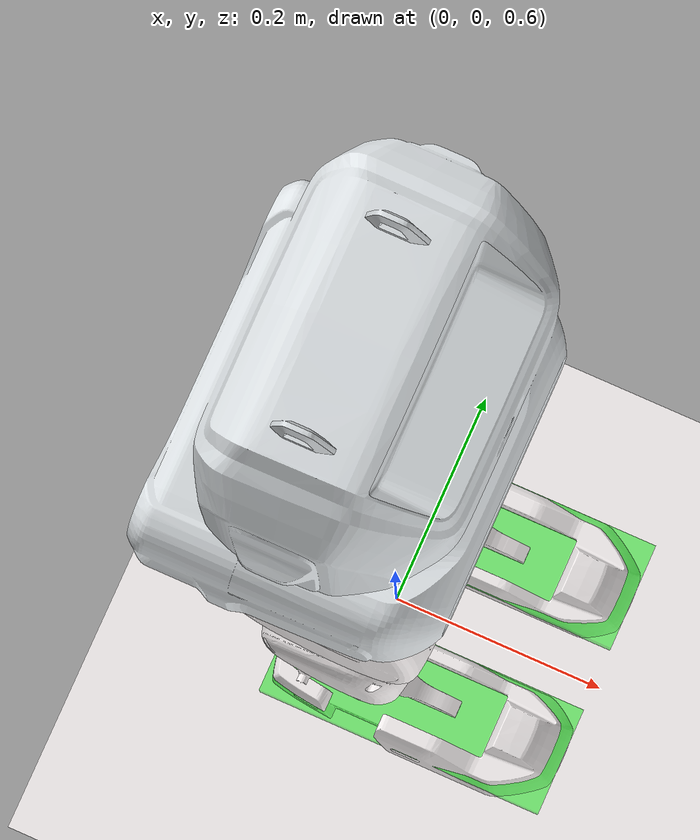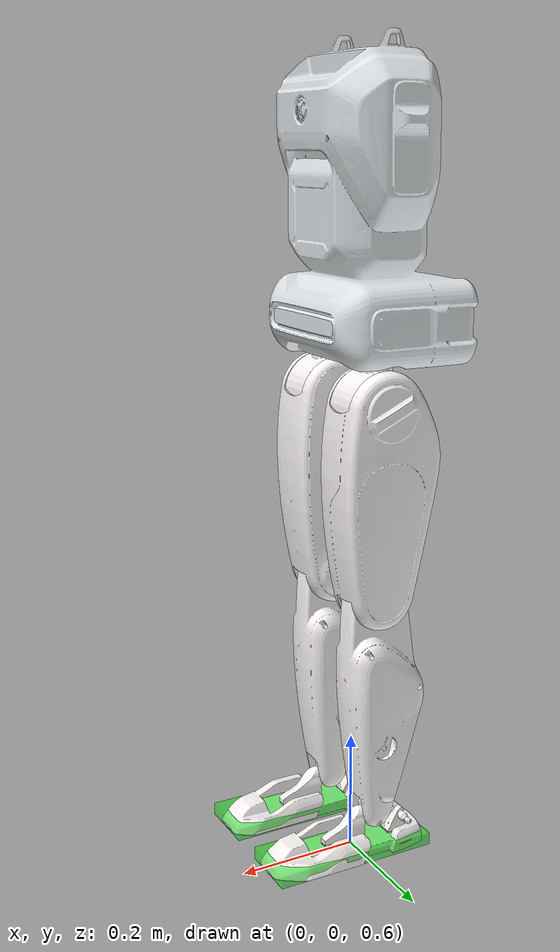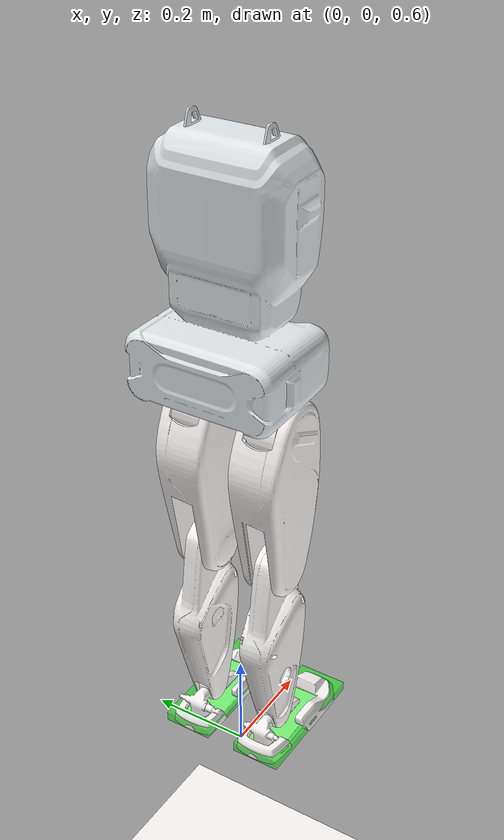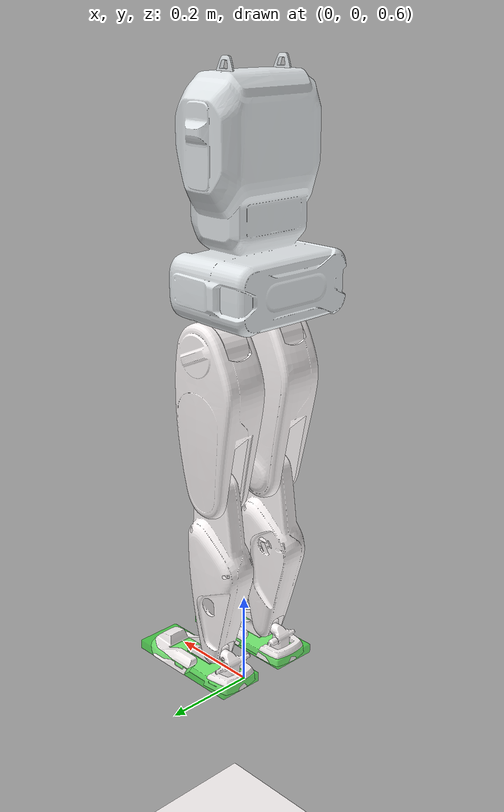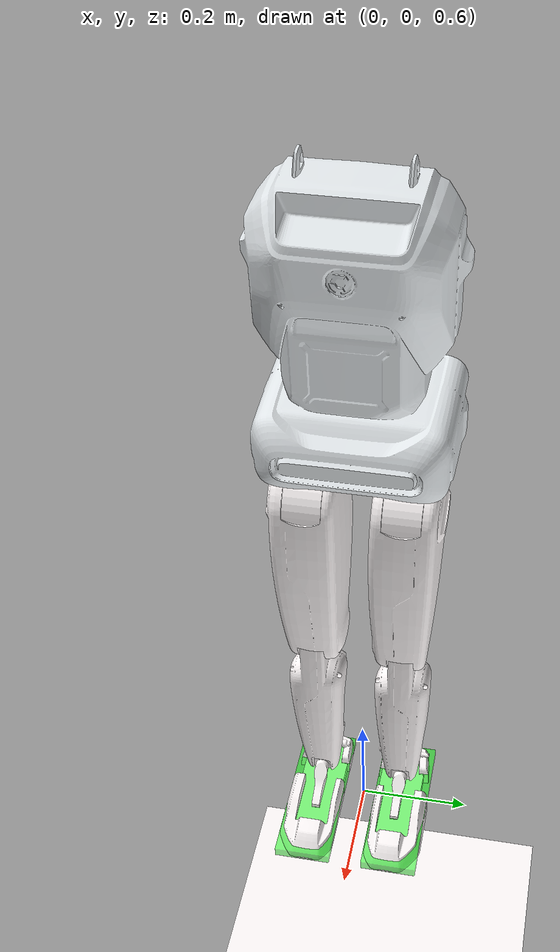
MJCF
<mujoco model="zqsa01">
  <compiler angle="radian" meshdir="../meshes/" />
    <option timestep='0.002' iterations='50' solver='Newton' gravity='0 0 -9.81' integrator = 'RK4'/>
    <size njmax="500" nconmax="100" />

  <size nuser_actuator='1' nuser_sensor='1' nuser_geom='1'/>

  <visual>
      <quality shadowsize='4096'/>
      <map znear='0.01'/>
  </visual>

  <default>
      <geom contype='0' conaffinity='0' condim='3' solref='0.01 0.7' rgba="1.0000 0.9804 0.9804 1"/>
  </default>

  <asset>
    <texture name='plane' type='2d' builtin='checker' rgb1='0.2745 0.5098 0.7059' rgb2='0.5294 0.8078 0.9804' width='512' height='512'/>
    <material name='plane' reflectance='0.0' texture='plane' texrepeat='1 1' texuniform='true'/>
    <mesh name="base_link" file="Base_link.STL" />
    <mesh name="left_leg_link_01" file="LeftLeg_Link_01.STL" />
    <mesh name="left_leg_link_02" file="LeftLeg_Link_02.STL" />
    <mesh name="left_leg_link_03" file="LeftLeg_Link_03.STL" />
    <mesh name="left_leg_link_04" file="LeftLeg_Link_04.STL" />
    <mesh name="left_leg_link_05" file="LeftLeg_Link_05.STL" />
    <mesh name="left_leg_link_06" file="LeftLeg_Link_06.STL" />
    <mesh name="right_leg_link_01" file="RightLeg_Link_01.STL" />
    <mesh name="right_leg_link_02" file="RightLeg_Link_02.STL" />
    <mesh name="right_leg_link_03" file="RightLeg_Link_03.STL" />
    <mesh name="right_leg_link_04" file="RightLeg_Link_04.STL" />
    <mesh name="right_leg_link_05" file="RightLeg_Link_05.STL" />
    <mesh name="right_leg_link_06" file="RightLeg_Link_06.STL" />
  </asset>

  <worldbody>
  <geom name="floor" type="plane" conaffinity="2" size="100 100 .2" material="plane"/>
    <body name="base_link" pos="0 0 1.5">

      <inertial pos="-0.030427 0.00055533 0.10697" quat="1 0 0 0" mass="10.176"
        diaginertia="0.24707543 0.21999950689 0.09662582243" />
      <joint name="root" type="free"/>
      <geom type="mesh" rgba="0.898039 0.917647 0.929412 1" mesh="base_link" contype="0"
        conaffinity="0" solimp=".9 .99 .003" />
      <geom size="0.0001 0.0001 0.0001" type="box" pos="-0.1 0 0.4" rgba="0.6 0.5 0.7 1" contype="2"
        conaffinity="4" solimp=".9 .99 .003" />
      <site name='imu' size='0.01' pos='0.0 0 0.0' />

      <body name="leg_l1_link" pos="0 0.075 0">
        <inertial pos="0.0003501 0.00043844 -0.0020201"
          quat="-0.0065488 0.706024 -0.0111095 0.70807" mass="1.6592"
          diaginertia="0.00296297 0.00222409 0.00170967" />
        <joint name="leg_l1_joint" pos="0 0 0" axis="1 0 0" limited="true" range="-0.523 0.523" armature="0.042" />
        <geom type="mesh" contype="2" conaffinity="4" group="1" mesh="left_leg_link_01" />
        <geom type="mesh" mesh="left_leg_link_01" />
        <body name="leg_l2_link" pos="0 0 0">
          <inertial pos="0.00038352 0.0010044 -0.12214"
            quat="0.70363 0.00263141 -0.0033314 0.710554" mass="1.8008"
            diaginertia="0.00367949 0.00285141 0.00191724" />
          <joint name="leg_l2_joint" pos="0 0 0" axis="0 0 1" limited="true" range="-0.3 0.3" armature="0.042" />
          <geom type="mesh" contype="2" conaffinity="4" group="1" mesh="left_leg_link_02" />
          <geom type="mesh" mesh="left_leg_link_02" />
          <body name="leg_l3_link" pos="0 0 -0.1311">
            <inertial pos="-0.0017654 0.0012877 -0.13954"
              quat="0.705731 -0.0339526 -0.0114711 0.707573" mass="3.9299"
              diaginertia="0.0356364 0.0321225 0.0100504" />
            <joint name="leg_l3_joint" pos="0 0 0" axis="0 1 0" limited="true" range="-1.204 1.204"  armature="0.042" />
            <geom type="mesh" contype="2" conaffinity="4" group="1" mesh="left_leg_link_03" />
            <geom type="mesh" mesh="left_leg_link_03" />
            <body name="leg_l4_link" pos="0 5.9998e-05 -0.3">
              <inertial pos="-0.00751 -0.00041 -0.16322"
                quat="0.693729 0.00650206 0.000979008 0.720206" mass="2.7251"
                diaginertia="0.0323536 0.0303232 0.0038887" />
              <joint name="leg_l4_joint" pos="0 0 0" axis="0 1 0" limited="true" range="-0.15 2.268" armature="0.042" />
              <geom type="mesh" contype="2" conaffinity="4" group="1" mesh="left_leg_link_04" />
              <geom type="mesh" mesh="left_leg_link_04" />
              <body name="leg_l5_link" pos="0 7.0122e-05 -0.37">
                <inertial pos="-2.5946e-10 -5e-05 -3.4499e-09" mass="0.16135"
                  diaginertia="3.0975E-05 3.1274E-05 3.1681E-05" />
                <joint name="leg_l5_joint" pos="0 0 0" axis="0 1 0" limited="true" range="-1 0.6" armature="0.0035" />
                <geom type="mesh" contype="0" conaffinity="0" group="1" mesh="left_leg_link_05" />
                <geom type="mesh" mesh="left_leg_link_05" />
                <body name="leg_l6_link" pos="0 0 0">
                  <inertial pos="0.030366 0.0019502 -0.03549"
                    quat="-0.00154474 0.73536 0.0223416 0.677307" mass="1.1926"
                    diaginertia="0.0064983 0.00607208 0.0010107" />
                  <joint name="leg_l6_joint" pos="0 0 0" axis="1 0 0" limited="true" range="-0.6 0.6" armature="0.0035" />
                  <geom size="0.135 0.050 0.01" pos="0.06 0.005 -0.045" type="box" contype="2" conaffinity="4" rgba="0 1 0 0.5"/>
                  <geom type="mesh" mesh="left_leg_link_06" />
                </body>
              </body>
            </body>
          </body>
        </body>
      </body>
      <body name="leg_r1_link" pos="0 -0.075 0">
        <inertial pos="0.0003501 0.00043844 -0.0020201"
          quat="-0.0065488 0.706024 -0.0111095 0.70807" mass="1.6592"
          diaginertia="0.00296297 0.00222409 0.00170967" />
        <joint name="leg_r1_joint" pos="0 0 0" axis="1 0 0" limited="true" range="-0.523 0.523" armature="0.042" />
        <geom type="mesh" contype="2" conaffinity="4" group="1" mesh="right_leg_link_01" />
        <geom type="mesh" mesh="right_leg_link_01" />
        <body name="leg_r2_link" pos="0 0 0">
          <inertial pos="-0.00038352 -0.0010044 -0.12214"
            quat="0.70363 -0.00263141 0.0033314 0.710554" mass="1.8008"
            diaginertia="0.00367949 0.00285141 0.00191724" />
          <joint name="leg_r2_joint" pos="0 0 0" axis="0 0 1" limited="true" range="-0.3 0.3" armature="0.042" />
          <geom type="mesh" contype="2" conaffinity="4" group="1" mesh="right_leg_link_02" />
          <geom type="mesh" mesh="right_leg_link_02" />
          <body name="leg_r3_link" pos="0 0 -0.1311">
            <inertial pos="-0.0017403 -0.0012919 -0.13954"
              quat="0.708108 -0.0111519 -0.0337366 0.70521" mass="3.9294"
              diaginertia="0.0356245 0.032111 0.0100492" />
            <joint name="leg_r3_joint" pos="0 0 0" axis="0 1 0" limited="true" range="-1.204 1.204" armature="0.042" />
            <geom type="mesh" contype="2" conaffinity="4" group="1" mesh="right_leg_link_03" />
            <geom type="mesh" mesh="right_leg_link_03" />
            <body name="leg_r4_link" pos="0 -5.9998e-05 -0.3">
              <inertial pos="-0.00751 0.00047274 -0.16321"
                quat="0.72021 0.000981472 0.0065065 0.693725" mass="2.72497"
                diaginertia="0.0323518 0.0303213 0.00388869" />
              <joint name="leg_r4_joint" pos="0 0 0" axis="0 1 0" limited="true" range="-0.15 2.268" armature="0.042" />
              <geom type="mesh" contype="2" conaffinity="4" group="1" mesh="right_leg_link_04" />
              <geom type="mesh" mesh="right_leg_link_04" />
              <body name="leg_r5_link" pos="0 -7.0122e-05 -0.37">
                <inertial pos="2.5946e-10 5e-05 -3.4499e-09" mass="0.16135"
                  diaginertia="3.0975E-05 3.1274E-05 3.1274E-05" />
                <joint name="leg_r5_joint" pos="0 0 0" axis="0 1 0" limited="true" range="-1 0.6" armature="0.0035" />
                <geom type="mesh" contype="0" conaffinity="0" group="1" mesh="right_leg_link_05" />
                <geom type="mesh" mesh="right_leg_link_05" />
                <body name="leg_r6_link" pos="0 0 0">
                  <inertial pos="0.030366 -0.0019504 -0.03549"
                    quat="0.00154561 0.735362 -0.0223429 0.677304" mass="1.1926"
                    diaginertia="0.00649845 0.00607224 0.00101071" />
                  <joint name="leg_r6_joint" pos="0 0 0" axis="1 0 0" limited="true" range="-0.6 0.6" armature="0.0035" />
                  <geom size="0.135 0.050 0.01" pos="0.06 -0.005 -0.045" type="box" contype="2" conaffinity="4" rgba="0 1 0 0.5"/>
                  <geom type="mesh" mesh="right_leg_link_06" />
                </body>
              </body>
            </body>
          </body>
        </body>
      </body>
    </body>
  </worldbody>
  <actuator>
    <motor name="leg_l1_joint" joint="leg_l1_joint" gear="1" ctrllimited="true"
      ctrlrange="-200 200" />
    <motor name="leg_l2_joint" joint="leg_l2_joint" gear="1" ctrllimited="true"
      ctrlrange="-200 200" />
    <motor name="leg_l3_joint" joint="leg_l3_joint" gear="1" ctrllimited="true"
      ctrlrange="-200 200" />
    <motor name="leg_l4_joint" joint="leg_l4_joint" gear="1" ctrllimited="true" ctrlrange="-200 200" />
    <motor name="leg_l5_joint" joint="leg_l5_joint" gear="1" ctrllimited="true"
      ctrlrange="-200 200" />
    <motor name="leg_l6_joint" joint="leg_l6_joint" gear="1" ctrllimited="true"
      ctrlrange="-200 200" />
    <motor name="leg_r1_joint" joint="leg_r1_joint" gear="1" ctrllimited="true"
      ctrlrange="-200 200" />
    <motor name="leg_r2_joint" joint="leg_r2_joint" gear="1" ctrllimited="true"
      ctrlrange="-200 200" />
    <motor name="leg_r3_joint" joint="leg_r3_joint" gear="1" ctrllimited="true"
      ctrlrange="-200 200" />
    <motor name="leg_r4_joint" joint="leg_r4_joint" gear="1" ctrllimited="true" ctrlrange="-200 200" />
    <motor name="leg_r5_joint" joint="leg_r5_joint" gear="1" ctrllimited="true"
      ctrlrange="-200 200" />
    <motor name="leg_r6_joint" joint="leg_r6_joint" gear="1" ctrllimited="true"
      ctrlrange="-200 200" />
  </actuator>

  <sensor>
    <actuatorpos name='leg_l1_joint_p' actuator='leg_l1_joint' user='13' />
    <actuatorpos name='leg_l2_joint_p' actuator='leg_l2_joint' user='13' />
    <actuatorpos name='leg_l3_joint_p' actuator='leg_l3_joint' user='13' />
    <actuatorpos name='leg_l4_joint_p' actuator='leg_l4_joint' user='13' />
    <actuatorpos name='leg_l5_joint_p' actuator='leg_l5_joint' user='13' />
    <actuatorpos name='leg_l6_joint_p' actuator='leg_l6_joint' user='13' />
    <actuatorpos name='leg_r1_joint_p' actuator='leg_r1_joint' user='13' />
    <actuatorpos name='leg_r2_joint_p' actuator='leg_r2_joint' user='13' />
    <actuatorpos name='leg_r3_joint_p' actuator='leg_r3_joint' user='13' />
    <actuatorpos name='leg_r4_joint_p' actuator='leg_r4_joint' user='13' />
    <actuatorpos name='leg_r5_joint_p' actuator='leg_r5_joint' user='13' />
    <actuatorpos name='leg_r6_joint_p' actuator='leg_r6_joint' user='13' />

    <actuatorvel name='leg_l1_joint_v' actuator='leg_l1_joint' user='13' />
    <actuatorvel name='leg_l2_joint_v' actuator='leg_l2_joint' user='13' />
    <actuatorvel name='leg_l3_joint_v' actuator='leg_l3_joint' user='13' />
    <actuatorvel name='leg_l4_joint_v' actuator='leg_l4_joint' user='13' />
    <actuatorvel name='leg_l5_joint_v' actuator='leg_l5_joint' user='13' />
    <actuatorvel name='leg_l6_joint_v' actuator='leg_l6_joint' user='13' />
    <actuatorvel name='leg_r1_joint_v' actuator='leg_r1_joint' user='13' />
    <actuatorvel name='leg_r2_joint_v' actuator='leg_r2_joint' user='13' />
    <actuatorvel name='leg_r3_joint_v' actuator='leg_r3_joint' user='13' />
    <actuatorpos name='leg_r4_joint_v' actuator='leg_r4_joint' user='13' />
    <actuatorvel name='leg_r5_joint_v' actuator='leg_r5_joint' user='13' />
    <actuatorvel name='leg_r6_joint_v' actuator='leg_r6_joint' user='13' />

    <actuatorfrc name='leg_l1_joint_f' actuator='leg_l1_joint' user='13' noise='1e-3' />
    <actuatorfrc name='leg_l2_joint_f' actuator='leg_l2_joint' user='13' noise='1e-3' />
    <actuatorfrc name='leg_l3_joint_f' actuator='leg_l3_joint' user='13' />
    <actuatorfrc name='leg_l4_joint_f' actuator='leg_l4_joint' user='13' noise='1e-3' />
    <actuatorfrc name='leg_l5_joint_f' actuator='leg_l5_joint' user='13' noise='1e-3' />
    <actuatorfrc name='leg_l6_joint_f' actuator='leg_l6_joint' user='13' noise='1e-3' />
    <actuatorfrc name='leg_r1_joint_f' actuator='leg_r1_joint' user='13' noise='1e-3' />
    <actuatorfrc name='leg_r2_joint_f' actuator='leg_r2_joint' user='13' noise='1e-3' />
    <actuatorfrc name='leg_r3_joint_f' actuator='leg_r3_joint' user='13' />
    <actuatorpos name='leg_r4_joint_f' actuator='leg_r4_joint' user='13' noise='1e-3' />
    <actuatorfrc name='leg_r5_joint_f' actuator='leg_r5_joint' user='13' noise='1e-3' />
    <actuatorfrc name='leg_r6_joint_f' actuator='leg_r6_joint' user='13' noise='1e-3' />

    <framequat name='orientation' objtype='site' noise='0.001' objname='imu' />
    <framepos name='position' objtype='site' noise='0.001' objname='imu' />
    <gyro name='angular-velocity' site='imu' noise='0.005' cutoff='34.9' />
    <velocimeter name='linear-velocity' site='imu' noise='0.001' cutoff='30' />
    <accelerometer name='linear-acceleration' site='imu' noise='0.005' cutoff='157' />
    <magnetometer name='magnetometer' site='imu' />

  </sensor>
</mujoco>
